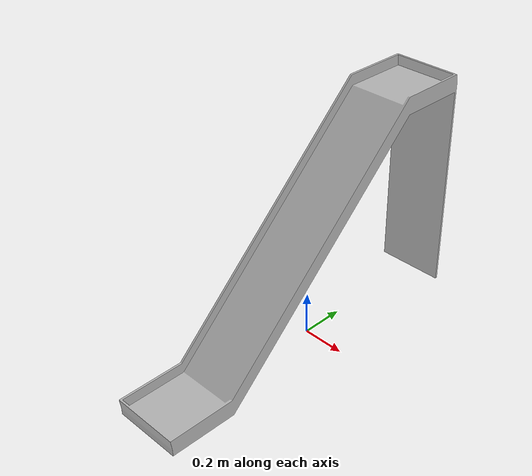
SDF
<?xml version="1.0"?>
<sdf version="1.5">
  <model name="rampa">
    <static>true</static>
    <link name="rampa_link">
      <collision name="rampa_collision">
        <geometry>
          <mesh>
            <uri>model://rampa/meshes/rampa.dae</uri>
          </mesh>
        </geometry>
      </collision>

      <visual name="rampa_mesh">
        <cast_shadows>true</cast_shadows>
        <geometry>
          <mesh>
            <uri>model://rampa/meshes/rampa.dae</uri>
          </mesh>
        </geometry>
      </visual>
    </link>
  </model>
</sdf>
